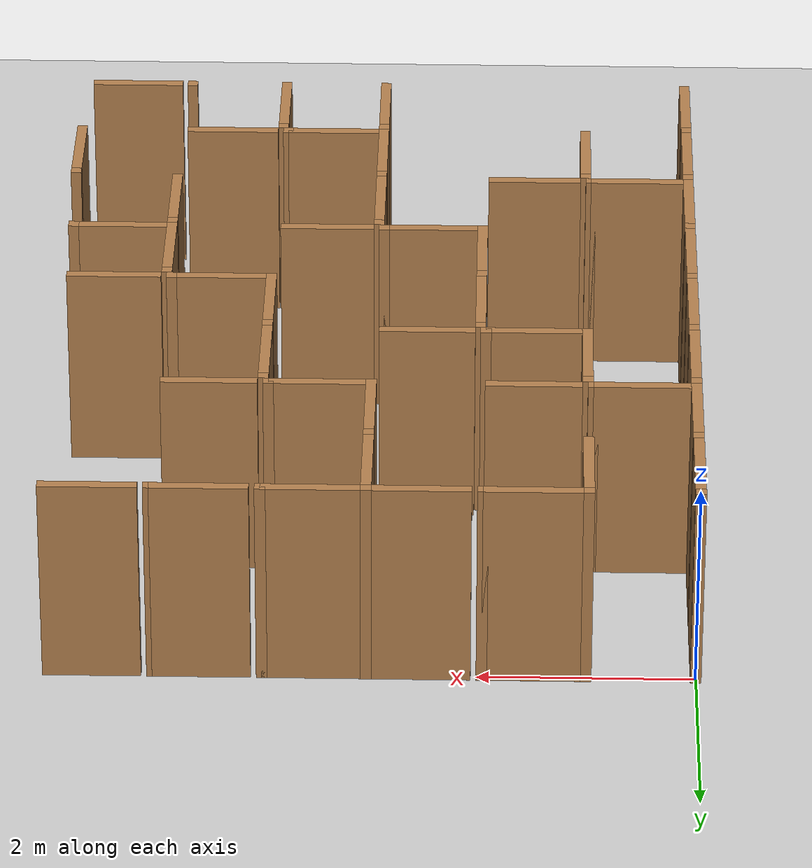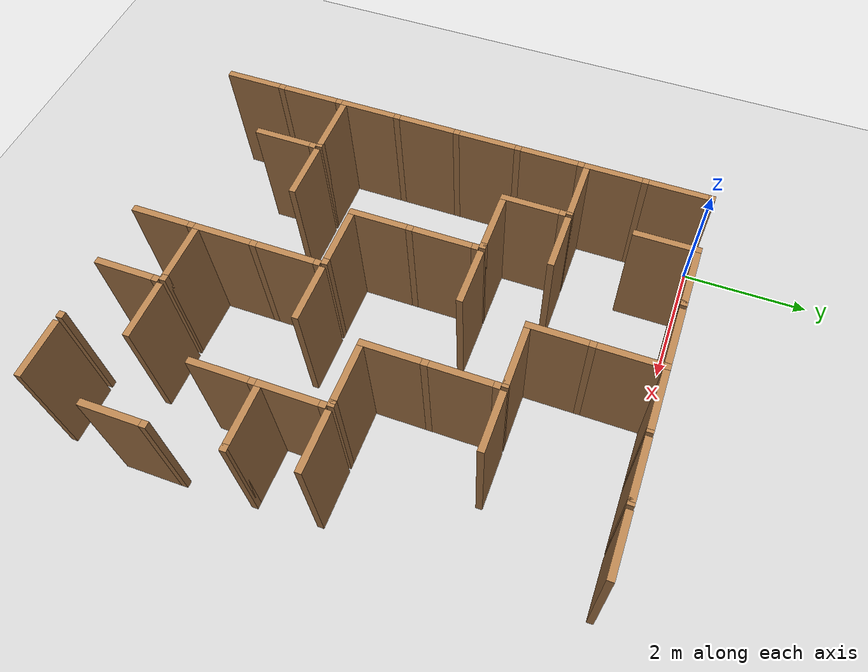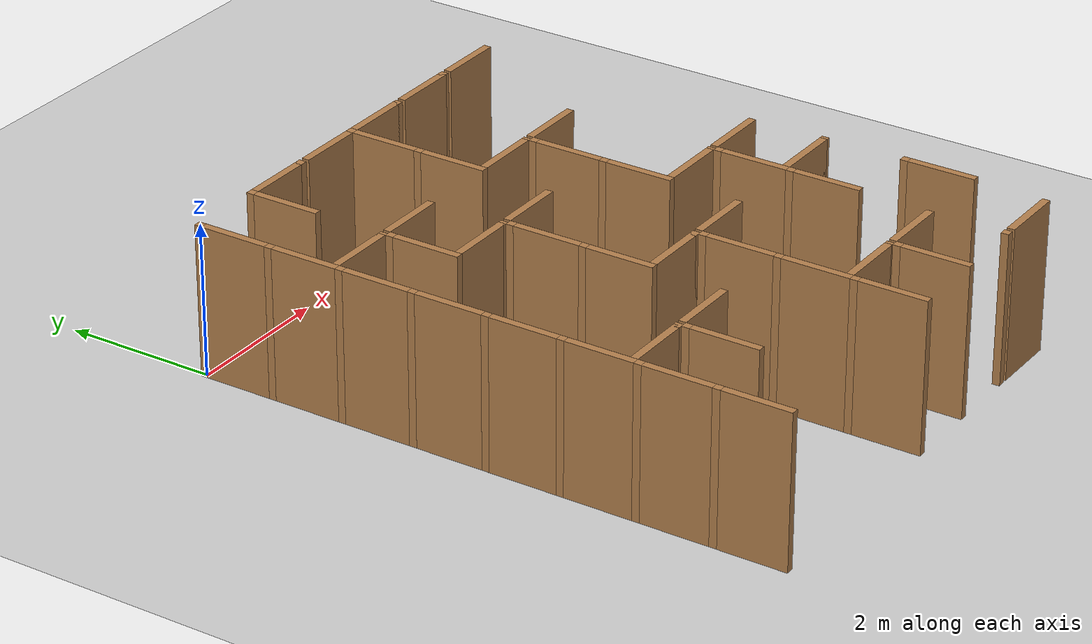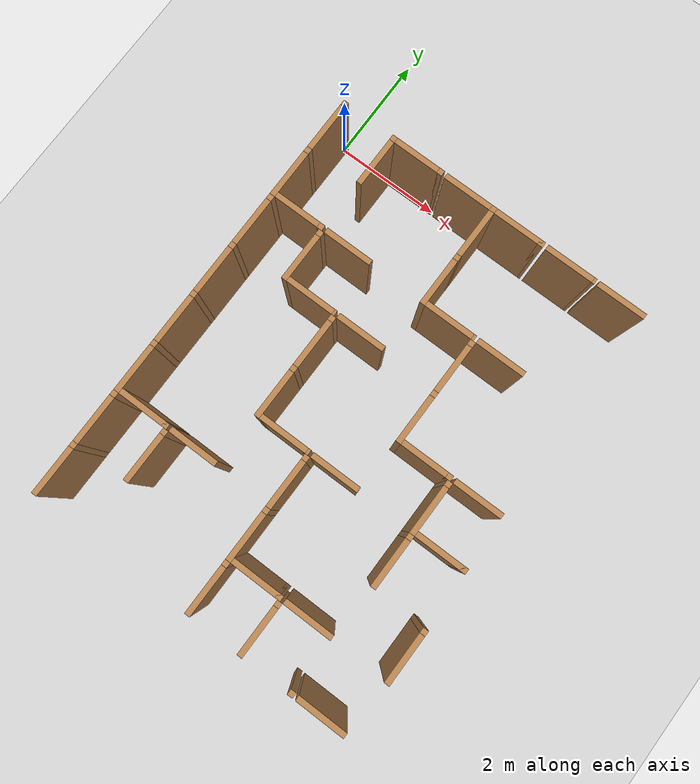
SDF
<sdf version="1.6">
 <world name="default">
  <include><uri>model://sun</uri></include>
  <model name="ground_plane">
   <static>true</static>
   <link name="link">
    <collision name="collision"><geometry><plane><size>12.0 12.0</size></plane></geometry></collision>
    <visual name="visual">
     <cast_shadows>false</cast_shadows>
     <geometry><plane><size>12.0 12.0</size></plane></geometry>
     <material>
      <script><uri>file://media/materials/scripts/gazebo.material</uri><name>Gazebo/Grey</name></script>
     </material>
    </visual>
   </link>
   <pose>6.0 -6.0 0 0 0 0</pose>
  </model>
  <model name="vwall_0_0">
   <pose>0.0 -0.5 1.0 0 0 0</pose>
   <link name="link">
    <collision name="collision"><geometry><box><size>0.1 0.9 2</size></box></geometry></collision>
    <visual name="visual">
     <geometry><box><size>0.1 0.9 2</size></box></geometry>
     <material>
      <script><uri>file://media/materials/scripts/gazebo.material</uri><name>Gazebo/Wood</name></script>
     </material>
    </visual>
   </link>
  </model>
  <model name="joint_0.0_0.0">
   <pose>0.0 0.0 1.0 0 0 0</pose>
   <link name="link">
    <collision name="collision"><geometry><box><size>0.1 0.1 2</size></box></geometry></collision>
    <visual name="visual">
     <geometry><box><size>0.1 0.1 2</size></box></geometry>
     <material>
      <script><uri>file://media/materials/scripts/gazebo.material</uri><name>Gazebo/Wood</name></script>
     </material>
    </visual>
   </link>
  </model>
  <model name="vwall_0_1">
   <pose>1.0 -0.5 1.0 0 0 0</pose>
   <link name="link">
    <collision name="collision"><geometry><box><size>0.1 0.9 2</size></box></geometry></collision>
    <visual name="visual">
     <geometry><box><size>0.1 0.9 2</size></box></geometry>
     <material>
      <script><uri>file://media/materials/scripts/gazebo.material</uri><name>Gazebo/Wood</name></script>
     </material>
    </visual>
   </link>
  </model>
  <model name="joint_1.0_0.0">
   <pose>1.0 0.0 1.0 0 0 0</pose>
   <link name="link">
    <collision name="collision"><geometry><box><size>0.1 0.1 2</size></box></geometry></collision>
    <visual name="visual">
     <geometry><box><size>0.1 0.1 2</size></box></geometry>
     <material>
      <script><uri>file://media/materials/scripts/gazebo.material</uri><name>Gazebo/Wood</name></script>
     </material>
    </visual>
   </link>
  </model>
  <model name="vwall_0_3">
   <pose>3.0 -0.5 1.0 0 0 0</pose>
   <link name="link">
    <collision name="collision"><geometry><box><size>0.1 0.9 2</size></box></geometry></collision>
    <visual name="visual">
     <geometry><box><size>0.1 0.9 2</size></box></geometry>
     <material>
      <script><uri>file://media/materials/scripts/gazebo.material</uri><name>Gazebo/Wood</name></script>
     </material>
    </visual>
   </link>
  </model>
  <model name="joint_3.0_0.0">
   <pose>3.0 0.0 1.0 0 0 0</pose>
   <link name="link">
    <collision name="collision"><geometry><box><size>0.1 0.1 2</size></box></geometry></collision>
    <visual name="visual">
     <geometry><box><size>0.1 0.1 2</size></box></geometry>
     <material>
      <script><uri>file://media/materials/scripts/gazebo.material</uri><name>Gazebo/Wood</name></script>
     </material>
    </visual>
   </link>
  </model>
  <model name="vwall_1_0">
   <pose>0.0 -1.5 1.0 0 0 0</pose>
   <link name="link">
    <collision name="collision"><geometry><box><size>0.1 0.9 2</size></box></geometry></collision>
    <visual name="visual">
     <geometry><box><size>0.1 0.9 2</size></box></geometry>
     <material>
      <script><uri>file://media/materials/scripts/gazebo.material</uri><name>Gazebo/Wood</name></script>
     </material>
    </visual>
   </link>
  </model>
  <model name="joint_0.0_-1.0">
   <pose>0.0 -1.0 1.0 0 0 0</pose>
   <link name="link">
    <collision name="collision"><geometry><box><size>0.1 0.1 2</size></box></geometry></collision>
    <visual name="visual">
     <geometry><box><size>0.1 0.1 2</size></box></geometry>
     <material>
      <script><uri>file://media/materials/scripts/gazebo.material</uri><name>Gazebo/Wood</name></script>
     </material>
    </visual>
   </link>
  </model>
  <model name="vwall_1_3">
   <pose>3.0 -1.5 1.0 0 0 0</pose>
   <link name="link">
    <collision name="collision"><geometry><box><size>0.1 0.9 2</size></box></geometry></collision>
    <visual name="visual">
     <geometry><box><size>0.1 0.9 2</size></box></geometry>
     <material>
      <script><uri>file://media/materials/scripts/gazebo.material</uri><name>Gazebo/Wood</name></script>
     </material>
    </visual>
   </link>
  </model>
  <model name="joint_3.0_-1.0">
   <pose>3.0 -1.0 1.0 0 0 0</pose>
   <link name="link">
    <collision name="collision"><geometry><box><size>0.1 0.1 2</size></box></geometry></collision>
    <visual name="visual">
     <geometry><box><size>0.1 0.1 2</size></box></geometry>
     <material>
      <script><uri>file://media/materials/scripts/gazebo.material</uri><name>Gazebo/Wood</name></script>
     </material>
    </visual>
   </link>
  </model>
  <model name="vwall_2_0">
   <pose>0.0 -2.5 1.0 0 0 0</pose>
   <link name="link">
    <collision name="collision"><geometry><box><size>0.1 0.9 2</size></box></geometry></collision>
    <visual name="visual">
     <geometry><box><size>0.1 0.9 2</size></box></geometry>
     <material>
      <script><uri>file://media/materials/scripts/gazebo.material</uri><name>Gazebo/Wood</name></script>
     </material>
    </visual>
   </link>
  </model>
  <model name="joint_0.0_-2.0">
   <pose>0.0 -2.0 1.0 0 0 0</pose>
   <link name="link">
    <collision name="collision"><geometry><box><size>0.1 0.1 2</size></box></geometry></collision>
    <visual name="visual">
     <geometry><box><size>0.1 0.1 2</size></box></geometry>
     <material>
      <script><uri>file://media/materials/scripts/gazebo.material</uri><name>Gazebo/Wood</name></script>
     </material>
    </visual>
   </link>
  </model>
  <model name="vwall_2_1">
   <pose>1.0 -2.5 1.0 0 0 0</pose>
   <link name="link">
    <collision name="collision"><geometry><box><size>0.1 0.9 2</size></box></geometry></collision>
    <visual name="visual">
     <geometry><box><size>0.1 0.9 2</size></box></geometry>
     <material>
      <script><uri>file://media/materials/scripts/gazebo.material</uri><name>Gazebo/Wood</name></script>
     </material>
    </visual>
   </link>
  </model>
  <model name="joint_1.0_-2.0">
   <pose>1.0 -2.0 1.0 0 0 0</pose>
   <link name="link">
    <collision name="collision"><geometry><box><size>0.1 0.1 2</size></box></geometry></collision>
    <visual name="visual">
     <geometry><box><size>0.1 0.1 2</size></box></geometry>
     <material>
      <script><uri>file://media/materials/scripts/gazebo.material</uri><name>Gazebo/Wood</name></script>
     </material>
    </visual>
   </link>
  </model>
  <model name="vwall_2_4">
   <pose>4.0 -2.5 1.0 0 0 0</pose>
   <link name="link">
    <collision name="collision"><geometry><box><size>0.1 0.9 2</size></box></geometry></collision>
    <visual name="visual">
     <geometry><box><size>0.1 0.9 2</size></box></geometry>
     <material>
      <script><uri>file://media/materials/scripts/gazebo.material</uri><name>Gazebo/Wood</name></script>
     </material>
    </visual>
   </link>
  </model>
  <model name="joint_4.0_-2.0">
   <pose>4.0 -2.0 1.0 0 0 0</pose>
   <link name="link">
    <collision name="collision"><geometry><box><size>0.1 0.1 2</size></box></geometry></collision>
    <visual name="visual">
     <geometry><box><size>0.1 0.1 2</size></box></geometry>
     <material>
      <script><uri>file://media/materials/scripts/gazebo.material</uri><name>Gazebo/Wood</name></script>
     </material>
    </visual>
   </link>
  </model>
  <model name="vwall_3_0">
   <pose>0.0 -3.5 1.0 0 0 0</pose>
   <link name="link">
    <collision name="collision"><geometry><box><size>0.1 0.9 2</size></box></geometry></collision>
    <visual name="visual">
     <geometry><box><size>0.1 0.9 2</size></box></geometry>
     <material>
      <script><uri>file://media/materials/scripts/gazebo.material</uri><name>Gazebo/Wood</name></script>
     </material>
    </visual>
   </link>
  </model>
  <model name="joint_0.0_-3.0">
   <pose>0.0 -3.0 1.0 0 0 0</pose>
   <link name="link">
    <collision name="collision"><geometry><box><size>0.1 0.1 2</size></box></geometry></collision>
    <visual name="visual">
     <geometry><box><size>0.1 0.1 2</size></box></geometry>
     <material>
      <script><uri>file://media/materials/scripts/gazebo.material</uri><name>Gazebo/Wood</name></script>
     </material>
    </visual>
   </link>
  </model>
  <model name="vwall_3_2">
   <pose>2.0 -3.5 1.0 0 0 0</pose>
   <link name="link">
    <collision name="collision"><geometry><box><size>0.1 0.9 2</size></box></geometry></collision>
    <visual name="visual">
     <geometry><box><size>0.1 0.9 2</size></box></geometry>
     <material>
      <script><uri>file://media/materials/scripts/gazebo.material</uri><name>Gazebo/Wood</name></script>
     </material>
    </visual>
   </link>
  </model>
  <model name="joint_2.0_-3.0">
   <pose>2.0 -3.0 1.0 0 0 0</pose>
   <link name="link">
    <collision name="collision"><geometry><box><size>0.1 0.1 2</size></box></geometry></collision>
    <visual name="visual">
     <geometry><box><size>0.1 0.1 2</size></box></geometry>
     <material>
      <script><uri>file://media/materials/scripts/gazebo.material</uri><name>Gazebo/Wood</name></script>
     </material>
    </visual>
   </link>
  </model>
  <model name="vwall_3_4">
   <pose>4.0 -3.5 1.0 0 0 0</pose>
   <link name="link">
    <collision name="collision"><geometry><box><size>0.1 0.9 2</size></box></geometry></collision>
    <visual name="visual">
     <geometry><box><size>0.1 0.9 2</size></box></geometry>
     <material>
      <script><uri>file://media/materials/scripts/gazebo.material</uri><name>Gazebo/Wood</name></script>
     </material>
    </visual>
   </link>
  </model>
  <model name="joint_4.0_-3.0">
   <pose>4.0 -3.0 1.0 0 0 0</pose>
   <link name="link">
    <collision name="collision"><geometry><box><size>0.1 0.1 2</size></box></geometry></collision>
    <visual name="visual">
     <geometry><box><size>0.1 0.1 2</size></box></geometry>
     <material>
      <script><uri>file://media/materials/scripts/gazebo.material</uri><name>Gazebo/Wood</name></script>
     </material>
    </visual>
   </link>
  </model>
  <model name="vwall_4_0">
   <pose>0.0 -4.5 1.0 0 0 0</pose>
   <link name="link">
    <collision name="collision"><geometry><box><size>0.1 0.9 2</size></box></geometry></collision>
    <visual name="visual">
     <geometry><box><size>0.1 0.9 2</size></box></geometry>
     <material>
      <script><uri>file://media/materials/scripts/gazebo.material</uri><name>Gazebo/Wood</name></script>
     </material>
    </visual>
   </link>
  </model>
  <model name="joint_0.0_-4.0">
   <pose>0.0 -4.0 1.0 0 0 0</pose>
   <link name="link">
    <collision name="collision"><geometry><box><size>0.1 0.1 2</size></box></geometry></collision>
    <visual name="visual">
     <geometry><box><size>0.1 0.1 2</size></box></geometry>
     <material>
      <script><uri>file://media/materials/scripts/gazebo.material</uri><name>Gazebo/Wood</name></script>
     </material>
    </visual>
   </link>
  </model>
  <model name="vwall_4_2">
   <pose>2.0 -4.5 1.0 0 0 0</pose>
   <link name="link">
    <collision name="collision"><geometry><box><size>0.1 0.9 2</size></box></geometry></collision>
    <visual name="visual">
     <geometry><box><size>0.1 0.9 2</size></box></geometry>
     <material>
      <script><uri>file://media/materials/scripts/gazebo.material</uri><name>Gazebo/Wood</name></script>
     </material>
    </visual>
   </link>
  </model>
  <model name="joint_2.0_-4.0">
   <pose>2.0 -4.0 1.0 0 0 0</pose>
   <link name="link">
    <collision name="collision"><geometry><box><size>0.1 0.1 2</size></box></geometry></collision>
    <visual name="visual">
     <geometry><box><size>0.1 0.1 2</size></box></geometry>
     <material>
      <script><uri>file://media/materials/scripts/gazebo.material</uri><name>Gazebo/Wood</name></script>
     </material>
    </visual>
   </link>
  </model>
  <model name="vwall_4_5">
   <pose>5.0 -4.5 1.0 0 0 0</pose>
   <link name="link">
    <collision name="collision"><geometry><box><size>0.1 0.9 2</size></box></geometry></collision>
    <visual name="visual">
     <geometry><box><size>0.1 0.9 2</size></box></geometry>
     <material>
      <script><uri>file://media/materials/scripts/gazebo.material</uri><name>Gazebo/Wood</name></script>
     </material>
    </visual>
   </link>
  </model>
  <model name="joint_5.0_-4.0">
   <pose>5.0 -4.0 1.0 0 0 0</pose>
   <link name="link">
    <collision name="collision"><geometry><box><size>0.1 0.1 2</size></box></geometry></collision>
    <visual name="visual">
     <geometry><box><size>0.1 0.1 2</size></box></geometry>
     <material>
      <script><uri>file://media/materials/scripts/gazebo.material</uri><name>Gazebo/Wood</name></script>
     </material>
    </visual>
   </link>
  </model>
  <model name="vwall_5_0">
   <pose>0.0 -5.5 1.0 0 0 0</pose>
   <link name="link">
    <collision name="collision"><geometry><box><size>0.1 0.9 2</size></box></geometry></collision>
    <visual name="visual">
     <geometry><box><size>0.1 0.9 2</size></box></geometry>
     <material>
      <script><uri>file://media/materials/scripts/gazebo.material</uri><name>Gazebo/Wood</name></script>
     </material>
    </visual>
   </link>
  </model>
  <model name="joint_0.0_-5.0">
   <pose>0.0 -5.0 1.0 0 0 0</pose>
   <link name="link">
    <collision name="collision"><geometry><box><size>0.1 0.1 2</size></box></geometry></collision>
    <visual name="visual">
     <geometry><box><size>0.1 0.1 2</size></box></geometry>
     <material>
      <script><uri>file://media/materials/scripts/gazebo.material</uri><name>Gazebo/Wood</name></script>
     </material>
    </visual>
   </link>
  </model>
  <model name="vwall_5_3">
   <pose>3.0 -5.5 1.0 0 0 0</pose>
   <link name="link">
    <collision name="collision"><geometry><box><size>0.1 0.9 2</size></box></geometry></collision>
    <visual name="visual">
     <geometry><box><size>0.1 0.9 2</size></box></geometry>
     <material>
      <script><uri>file://media/materials/scripts/gazebo.material</uri><name>Gazebo/Wood</name></script>
     </material>
    </visual>
   </link>
  </model>
  <model name="joint_3.0_-5.0">
   <pose>3.0 -5.0 1.0 0 0 0</pose>
   <link name="link">
    <collision name="collision"><geometry><box><size>0.1 0.1 2</size></box></geometry></collision>
    <visual name="visual">
     <geometry><box><size>0.1 0.1 2</size></box></geometry>
     <material>
      <script><uri>file://media/materials/scripts/gazebo.material</uri><name>Gazebo/Wood</name></script>
     </material>
    </visual>
   </link>
  </model>
  <model name="vwall_5_5">
   <pose>5.0 -5.5 1.0 0 0 0</pose>
   <link name="link">
    <collision name="collision"><geometry><box><size>0.1 0.9 2</size></box></geometry></collision>
    <visual name="visual">
     <geometry><box><size>0.1 0.9 2</size></box></geometry>
     <material>
      <script><uri>file://media/materials/scripts/gazebo.material</uri><name>Gazebo/Wood</name></script>
     </material>
    </visual>
   </link>
  </model>
  <model name="joint_5.0_-5.0">
   <pose>5.0 -5.0 1.0 0 0 0</pose>
   <link name="link">
    <collision name="collision"><geometry><box><size>0.1 0.1 2</size></box></geometry></collision>
    <visual name="visual">
     <geometry><box><size>0.1 0.1 2</size></box></geometry>
     <material>
      <script><uri>file://media/materials/scripts/gazebo.material</uri><name>Gazebo/Wood</name></script>
     </material>
    </visual>
   </link>
  </model>
  <model name="vwall_6_0">
   <pose>0.0 -6.5 1.0 0 0 0</pose>
   <link name="link">
    <collision name="collision"><geometry><box><size>0.1 0.9 2</size></box></geometry></collision>
    <visual name="visual">
     <geometry><box><size>0.1 0.9 2</size></box></geometry>
     <material>
      <script><uri>file://media/materials/scripts/gazebo.material</uri><name>Gazebo/Wood</name></script>
     </material>
    </visual>
   </link>
  </model>
  <model name="joint_0.0_-6.0">
   <pose>0.0 -6.0 1.0 0 0 0</pose>
   <link name="link">
    <collision name="collision"><geometry><box><size>0.1 0.1 2</size></box></geometry></collision>
    <visual name="visual">
     <geometry><box><size>0.1 0.1 2</size></box></geometry>
     <material>
      <script><uri>file://media/materials/scripts/gazebo.material</uri><name>Gazebo/Wood</name></script>
     </material>
    </visual>
   </link>
  </model>
  <model name="vwall_6_1">
   <pose>1.0 -6.5 1.0 0 0 0</pose>
   <link name="link">
    <collision name="collision"><geometry><box><size>0.1 0.9 2</size></box></geometry></collision>
    <visual name="visual">
     <geometry><box><size>0.1 0.9 2</size></box></geometry>
     <material>
      <script><uri>file://media/materials/scripts/gazebo.material</uri><name>Gazebo/Wood</name></script>
     </material>
    </visual>
   </link>
  </model>
  <model name="joint_1.0_-6.0">
   <pose>1.0 -6.0 1.0 0 0 0</pose>
   <link name="link">
    <collision name="collision"><geometry><box><size>0.1 0.1 2</size></box></geometry></collision>
    <visual name="visual">
     <geometry><box><size>0.1 0.1 2</size></box></geometry>
     <material>
      <script><uri>file://media/materials/scripts/gazebo.material</uri><name>Gazebo/Wood</name></script>
     </material>
    </visual>
   </link>
  </model>
  <model name="vwall_6_3">
   <pose>3.0 -6.5 1.0 0 0 0</pose>
   <link name="link">
    <collision name="collision"><geometry><box><size>0.1 0.9 2</size></box></geometry></collision>
    <visual name="visual">
     <geometry><box><size>0.1 0.9 2</size></box></geometry>
     <material>
      <script><uri>file://media/materials/scripts/gazebo.material</uri><name>Gazebo/Wood</name></script>
     </material>
    </visual>
   </link>
  </model>
  <model name="joint_3.0_-6.0">
   <pose>3.0 -6.0 1.0 0 0 0</pose>
   <link name="link">
    <collision name="collision"><geometry><box><size>0.1 0.1 2</size></box></geometry></collision>
    <visual name="visual">
     <geometry><box><size>0.1 0.1 2</size></box></geometry>
     <material>
      <script><uri>file://media/materials/scripts/gazebo.material</uri><name>Gazebo/Wood</name></script>
     </material>
    </visual>
   </link>
  </model>
  <model name="vwall_6_6">
   <pose>6.0 -6.5 1.0 0 0 0</pose>
   <link name="link">
    <collision name="collision"><geometry><box><size>0.1 0.9 2</size></box></geometry></collision>
    <visual name="visual">
     <geometry><box><size>0.1 0.9 2</size></box></geometry>
     <material>
      <script><uri>file://media/materials/scripts/gazebo.material</uri><name>Gazebo/Wood</name></script>
     </material>
    </visual>
   </link>
  </model>
  <model name="joint_6.0_-6.0">
   <pose>6.0 -6.0 1.0 0 0 0</pose>
   <link name="link">
    <collision name="collision"><geometry><box><size>0.1 0.1 2</size></box></geometry></collision>
    <visual name="visual">
     <geometry><box><size>0.1 0.1 2</size></box></geometry>
     <material>
      <script><uri>file://media/materials/scripts/gazebo.material</uri><name>Gazebo/Wood</name></script>
     </material>
    </visual>
   </link>
  </model>
  <model name="vwall_7_0">
   <pose>0.0 -7.5 1.0 0 0 0</pose>
   <link name="link">
    <collision name="collision"><geometry><box><size>0.1 0.9 2</size></box></geometry></collision>
    <visual name="visual">
     <geometry><box><size>0.1 0.9 2</size></box></geometry>
     <material>
      <script><uri>file://media/materials/scripts/gazebo.material</uri><name>Gazebo/Wood</name></script>
     </material>
    </visual>
   </link>
  </model>
  <model name="joint_0.0_-7.0">
   <pose>0.0 -7.0 1.0 0 0 0</pose>
   <link name="link">
    <collision name="collision"><geometry><box><size>0.1 0.1 2</size></box></geometry></collision>
    <visual name="visual">
     <geometry><box><size>0.1 0.1 2</size></box></geometry>
     <material>
      <script><uri>file://media/materials/scripts/gazebo.material</uri><name>Gazebo/Wood</name></script>
     </material>
    </visual>
   </link>
  </model>
  <model name="vwall_7_3">
   <pose>3.0 -7.5 1.0 0 0 0</pose>
   <link name="link">
    <collision name="collision"><geometry><box><size>0.1 0.9 2</size></box></geometry></collision>
    <visual name="visual">
     <geometry><box><size>0.1 0.9 2</size></box></geometry>
     <material>
      <script><uri>file://media/materials/scripts/gazebo.material</uri><name>Gazebo/Wood</name></script>
     </material>
    </visual>
   </link>
  </model>
  <model name="joint_3.0_-7.0">
   <pose>3.0 -7.0 1.0 0 0 0</pose>
   <link name="link">
    <collision name="collision"><geometry><box><size>0.1 0.1 2</size></box></geometry></collision>
    <visual name="visual">
     <geometry><box><size>0.1 0.1 2</size></box></geometry>
     <material>
      <script><uri>file://media/materials/scripts/gazebo.material</uri><name>Gazebo/Wood</name></script>
     </material>
    </visual>
   </link>
  </model>
  <model name="vwall_7_4">
   <pose>4.0 -7.5 1.0 0 0 0</pose>
   <link name="link">
    <collision name="collision"><geometry><box><size>0.1 0.9 2</size></box></geometry></collision>
    <visual name="visual">
     <geometry><box><size>0.1 0.9 2</size></box></geometry>
     <material>
      <script><uri>file://media/materials/scripts/gazebo.material</uri><name>Gazebo/Wood</name></script>
     </material>
    </visual>
   </link>
  </model>
  <model name="joint_4.0_-7.0">
   <pose>4.0 -7.0 1.0 0 0 0</pose>
   <link name="link">
    <collision name="collision"><geometry><box><size>0.1 0.1 2</size></box></geometry></collision>
    <visual name="visual">
     <geometry><box><size>0.1 0.1 2</size></box></geometry>
     <material>
      <script><uri>file://media/materials/scripts/gazebo.material</uri><name>Gazebo/Wood</name></script>
     </material>
    </visual>
   </link>
  </model>
  <model name="hwall_0_1">
   <pose>1.5 0.0 1.0 0 0 0</pose>
   <link name="link">
    <collision name="collision"><geometry><box><size>0.9 0.1 2</size></box></geometry></collision>
    <visual name="visual">
     <geometry><box><size>0.9 0.1 2</size></box></geometry>
     <material>
      <script><uri>file://media/materials/scripts/gazebo.material</uri><name>Gazebo/Wood</name></script>
     </material>
    </visual>
   </link>
  </model>
  <model name="joint_1.95_0.0">
   <pose>1.95 0.0 1.0 0 0 0</pose>
   <link name="link">
    <collision name="collision"><geometry><box><size>0.1 0.1 2</size></box></geometry></collision>
    <visual name="visual">
     <geometry><box><size>0.1 0.1 2</size></box></geometry>
     <material>
      <script><uri>file://media/materials/scripts/gazebo.material</uri><name>Gazebo/Wood</name></script>
     </material>
    </visual>
   </link>
  </model>
  <model name="hwall_0_2">
   <pose>2.5 0.0 1.0 0 0 0</pose>
   <link name="link">
    <collision name="collision"><geometry><box><size>0.9 0.1 2</size></box></geometry></collision>
    <visual name="visual">
     <geometry><box><size>0.9 0.1 2</size></box></geometry>
     <material>
      <script><uri>file://media/materials/scripts/gazebo.material</uri><name>Gazebo/Wood</name></script>
     </material>
    </visual>
   </link>
  </model>
  <model name="hwall_0_3">
   <pose>3.5 0.0 1.0 0 0 0</pose>
   <link name="link">
    <collision name="collision"><geometry><box><size>0.9 0.1 2</size></box></geometry></collision>
    <visual name="visual">
     <geometry><box><size>0.9 0.1 2</size></box></geometry>
     <material>
      <script><uri>file://media/materials/scripts/gazebo.material</uri><name>Gazebo/Wood</name></script>
     </material>
    </visual>
   </link>
  </model>
  <model name="joint_3.95_0.0">
   <pose>3.95 0.0 1.0 0 0 0</pose>
   <link name="link">
    <collision name="collision"><geometry><box><size>0.1 0.1 2</size></box></geometry></collision>
    <visual name="visual">
     <geometry><box><size>0.1 0.1 2</size></box></geometry>
     <material>
      <script><uri>file://media/materials/scripts/gazebo.material</uri><name>Gazebo/Wood</name></script>
     </material>
    </visual>
   </link>
  </model>
  <model name="hwall_0_4">
   <pose>4.5 0.0 1.0 0 0 0</pose>
   <link name="link">
    <collision name="collision"><geometry><box><size>0.9 0.1 2</size></box></geometry></collision>
    <visual name="visual">
     <geometry><box><size>0.9 0.1 2</size></box></geometry>
     <material>
      <script><uri>file://media/materials/scripts/gazebo.material</uri><name>Gazebo/Wood</name></script>
     </material>
    </visual>
   </link>
  </model>
  <model name="joint_4.95_0.0">
   <pose>4.95 0.0 1.0 0 0 0</pose>
   <link name="link">
    <collision name="collision"><geometry><box><size>0.1 0.1 2</size></box></geometry></collision>
    <visual name="visual">
     <geometry><box><size>0.1 0.1 2</size></box></geometry>
     <material>
      <script><uri>file://media/materials/scripts/gazebo.material</uri><name>Gazebo/Wood</name></script>
     </material>
    </visual>
   </link>
  </model>
  <model name="hwall_0_5">
   <pose>5.5 0.0 1.0 0 0 0</pose>
   <link name="link">
    <collision name="collision"><geometry><box><size>0.9 0.1 2</size></box></geometry></collision>
    <visual name="visual">
     <geometry><box><size>0.9 0.1 2</size></box></geometry>
     <material>
      <script><uri>file://media/materials/scripts/gazebo.material</uri><name>Gazebo/Wood</name></script>
     </material>
    </visual>
   </link>
  </model>
  <model name="hwall_1_0">
   <pose>0.5 -1.9 1.0 0 0 0</pose>
   <link name="link">
    <collision name="collision"><geometry><box><size>0.9 0.1 2</size></box></geometry></collision>
    <visual name="visual">
     <geometry><box><size>0.9 0.1 2</size></box></geometry>
     <material>
      <script><uri>file://media/materials/scripts/gazebo.material</uri><name>Gazebo/Wood</name></script>
     </material>
    </visual>
   </link>
  </model>
  <model name="joint_0.95_-1.9">
   <pose>0.95 -1.9 1.0 0 0 0</pose>
   <link name="link">
    <collision name="collision"><geometry><box><size>0.1 0.1 2</size></box></geometry></collision>
    <visual name="visual">
     <geometry><box><size>0.1 0.1 2</size></box></geometry>
     <material>
      <script><uri>file://media/materials/scripts/gazebo.material</uri><name>Gazebo/Wood</name></script>
     </material>
    </visual>
   </link>
  </model>
  <model name="hwall_1_1">
   <pose>1.5 -1.9 1.0 0 0 0</pose>
   <link name="link">
    <collision name="collision"><geometry><box><size>0.9 0.1 2</size></box></geometry></collision>
    <visual name="visual">
     <geometry><box><size>0.9 0.1 2</size></box></geometry>
     <material>
      <script><uri>file://media/materials/scripts/gazebo.material</uri><name>Gazebo/Wood</name></script>
     </material>
    </visual>
   </link>
  </model>
  <model name="hwall_1_3">
   <pose>3.5 -1.9 1.0 0 0 0</pose>
   <link name="link">
    <collision name="collision"><geometry><box><size>0.9 0.1 2</size></box></geometry></collision>
    <visual name="visual">
     <geometry><box><size>0.9 0.1 2</size></box></geometry>
     <material>
      <script><uri>file://media/materials/scripts/gazebo.material</uri><name>Gazebo/Wood</name></script>
     </material>
    </visual>
   </link>
  </model>
  <model name="joint_3.95_-1.9">
   <pose>3.95 -1.9 1.0 0 0 0</pose>
   <link name="link">
    <collision name="collision"><geometry><box><size>0.1 0.1 2</size></box></geometry></collision>
    <visual name="visual">
     <geometry><box><size>0.1 0.1 2</size></box></geometry>
     <material>
      <script><uri>file://media/materials/scripts/gazebo.material</uri><name>Gazebo/Wood</name></script>
     </material>
    </visual>
   </link>
  </model>
  <model name="hwall_1_4">
   <pose>4.5 -1.9 1.0 0 0 0</pose>
   <link name="link">
    <collision name="collision"><geometry><box><size>0.9 0.1 2</size></box></geometry></collision>
    <visual name="visual">
     <geometry><box><size>0.9 0.1 2</size></box></geometry>
     <material>
      <script><uri>file://media/materials/scripts/gazebo.material</uri><name>Gazebo/Wood</name></script>
     </material>
    </visual>
   </link>
  </model>
  <model name="hwall_2_1">
   <pose>1.5 -2.9 1.0 0 0 0</pose>
   <link name="link">
    <collision name="collision"><geometry><box><size>0.9 0.1 2</size></box></geometry></collision>
    <visual name="visual">
     <geometry><box><size>0.9 0.1 2</size></box></geometry>
     <material>
      <script><uri>file://media/materials/scripts/gazebo.material</uri><name>Gazebo/Wood</name></script>
     </material>
    </visual>
   </link>
  </model>
  <model name="joint_1.95_-2.9">
   <pose>1.95 -2.9 1.0 0 0 0</pose>
   <link name="link">
    <collision name="collision"><geometry><box><size>0.1 0.1 2</size></box></geometry></collision>
    <visual name="visual">
     <geometry><box><size>0.1 0.1 2</size></box></geometry>
     <material>
      <script><uri>file://media/materials/scripts/gazebo.material</uri><name>Gazebo/Wood</name></script>
     </material>
    </visual>
   </link>
  </model>
  <model name="hwall_2_2">
   <pose>2.5 -2.9 1.0 0 0 0</pose>
   <link name="link">
    <collision name="collision"><geometry><box><size>0.9 0.1 2</size></box></geometry></collision>
    <visual name="visual">
     <geometry><box><size>0.9 0.1 2</size></box></geometry>
     <material>
      <script><uri>file://media/materials/scripts/gazebo.material</uri><name>Gazebo/Wood</name></script>
     </material>
    </visual>
   </link>
  </model>
  <model name="hwall_3_4">
   <pose>4.5 -3.9 1.0 0 0 0</pose>
   <link name="link">
    <collision name="collision"><geometry><box><size>0.9 0.1 2</size></box></geometry></collision>
    <visual name="visual">
     <geometry><box><size>0.9 0.1 2</size></box></geometry>
     <material>
      <script><uri>file://media/materials/scripts/gazebo.material</uri><name>Gazebo/Wood</name></script>
     </material>
    </visual>
   </link>
  </model>
  <model name="joint_4.95_-3.9">
   <pose>4.95 -3.9 1.0 0 0 0</pose>
   <link name="link">
    <collision name="collision"><geometry><box><size>0.1 0.1 2</size></box></geometry></collision>
    <visual name="visual">
     <geometry><box><size>0.1 0.1 2</size></box></geometry>
     <material>
      <script><uri>file://media/materials/scripts/gazebo.material</uri><name>Gazebo/Wood</name></script>
     </material>
    </visual>
   </link>
  </model>
  <model name="hwall_3_5">
   <pose>5.5 -3.9 1.0 0 0 0</pose>
   <link name="link">
    <collision name="collision"><geometry><box><size>0.9 0.1 2</size></box></geometry></collision>
    <visual name="visual">
     <geometry><box><size>0.9 0.1 2</size></box></geometry>
     <material>
      <script><uri>file://media/materials/scripts/gazebo.material</uri><name>Gazebo/Wood</name></script>
     </material>
    </visual>
   </link>
  </model>
  <model name="hwall_4_2">
   <pose>2.5 -4.9 1.0 0 0 0</pose>
   <link name="link">
    <collision name="collision"><geometry><box><size>0.9 0.1 2</size></box></geometry></collision>
    <visual name="visual">
     <geometry><box><size>0.9 0.1 2</size></box></geometry>
     <material>
      <script><uri>file://media/materials/scripts/gazebo.material</uri><name>Gazebo/Wood</name></script>
     </material>
    </visual>
   </link>
  </model>
  <model name="joint_2.95_-4.9">
   <pose>2.95 -4.9 1.0 0 0 0</pose>
   <link name="link">
    <collision name="collision"><geometry><box><size>0.1 0.1 2</size></box></geometry></collision>
    <visual name="visual">
     <geometry><box><size>0.1 0.1 2</size></box></geometry>
     <material>
      <script><uri>file://media/materials/scripts/gazebo.material</uri><name>Gazebo/Wood</name></script>
     </material>
    </visual>
   </link>
  </model>
  <model name="hwall_4_3">
   <pose>3.5 -4.9 1.0 0 0 0</pose>
   <link name="link">
    <collision name="collision"><geometry><box><size>0.9 0.1 2</size></box></geometry></collision>
    <visual name="visual">
     <geometry><box><size>0.9 0.1 2</size></box></geometry>
     <material>
      <script><uri>file://media/materials/scripts/gazebo.material</uri><name>Gazebo/Wood</name></script>
     </material>
    </visual>
   </link>
  </model>
  <model name="hwall_4_5">
   <pose>5.5 -4.9 1.0 0 0 0</pose>
   <link name="link">
    <collision name="collision"><geometry><box><size>0.9 0.1 2</size></box></geometry></collision>
    <visual name="visual">
     <geometry><box><size>0.9 0.1 2</size></box></geometry>
     <material>
      <script><uri>file://media/materials/scripts/gazebo.material</uri><name>Gazebo/Wood</name></script>
     </material>
    </visual>
   </link>
  </model>
  <model name="joint_5.95_-4.9">
   <pose>5.95 -4.9 1.0 0 0 0</pose>
   <link name="link">
    <collision name="collision"><geometry><box><size>0.1 0.1 2</size></box></geometry></collision>
    <visual name="visual">
     <geometry><box><size>0.1 0.1 2</size></box></geometry>
     <material>
      <script><uri>file://media/materials/scripts/gazebo.material</uri><name>Gazebo/Wood</name></script>
     </material>
    </visual>
   </link>
  </model>
  <model name="hwall_5_0">
   <pose>0.5 -5.9 1.0 0 0 0</pose>
   <link name="link">
    <collision name="collision"><geometry><box><size>0.9 0.1 2</size></box></geometry></collision>
    <visual name="visual">
     <geometry><box><size>0.9 0.1 2</size></box></geometry>
     <material>
      <script><uri>file://media/materials/scripts/gazebo.material</uri><name>Gazebo/Wood</name></script>
     </material>
    </visual>
   </link>
  </model>
  <model name="joint_0.95_-5.9">
   <pose>0.95 -5.9 1.0 0 0 0</pose>
   <link name="link">
    <collision name="collision"><geometry><box><size>0.1 0.1 2</size></box></geometry></collision>
    <visual name="visual">
     <geometry><box><size>0.1 0.1 2</size></box></geometry>
     <material>
      <script><uri>file://media/materials/scripts/gazebo.material</uri><name>Gazebo/Wood</name></script>
     </material>
    </visual>
   </link>
  </model>
  <model name="hwall_5_1">
   <pose>1.5 -5.9 1.0 0 0 0</pose>
   <link name="link">
    <collision name="collision"><geometry><box><size>0.9 0.1 2</size></box></geometry></collision>
    <visual name="visual">
     <geometry><box><size>0.9 0.1 2</size></box></geometry>
     <material>
      <script><uri>file://media/materials/scripts/gazebo.material</uri><name>Gazebo/Wood</name></script>
     </material>
    </visual>
   </link>
  </model>
  <model name="hwall_6_3">
   <pose>3.5 -6.9 1.0 0 0 0</pose>
   <link name="link">
    <collision name="collision"><geometry><box><size>0.9 0.1 2</size></box></geometry></collision>
    <visual name="visual">
     <geometry><box><size>0.9 0.1 2</size></box></geometry>
     <material>
      <script><uri>file://media/materials/scripts/gazebo.material</uri><name>Gazebo/Wood</name></script>
     </material>
    </visual>
   </link>
  </model>
  <model name="joint_3.95_-6.9">
   <pose>3.95 -6.9 1.0 0 0 0</pose>
   <link name="link">
    <collision name="collision"><geometry><box><size>0.1 0.1 2</size></box></geometry></collision>
    <visual name="visual">
     <geometry><box><size>0.1 0.1 2</size></box></geometry>
     <material>
      <script><uri>file://media/materials/scripts/gazebo.material</uri><name>Gazebo/Wood</name></script>
     </material>
    </visual>
   </link>
  </model>
  <model name="hwall_6_4">
   <pose>4.5 -6.9 1.0 0 0 0</pose>
   <link name="link">
    <collision name="collision"><geometry><box><size>0.9 0.1 2</size></box></geometry></collision>
    <visual name="visual">
     <geometry><box><size>0.9 0.1 2</size></box></geometry>
     <material>
      <script><uri>file://media/materials/scripts/gazebo.material</uri><name>Gazebo/Wood</name></script>
     </material>
    </visual>
   </link>
  </model>
  <model name="joint_4.95_-7.9">
   <pose>4.95 -7.9 1.0 0 0 0</pose>
   <link name="link">
    <collision name="collision"><geometry><box><size>0.1 0.1 2</size></box></geometry></collision>
    <visual name="visual">
     <geometry><box><size>0.1 0.1 2</size></box></geometry>
     <material>
      <script><uri>file://media/materials/scripts/gazebo.material</uri><name>Gazebo/Wood</name></script>
     </material>
    </visual>
   </link>
  </model>
  <model name="hwall_7_5">
   <pose>5.5 -7.9 1.0 0 0 0</pose>
   <link name="link">
    <collision name="collision"><geometry><box><size>0.9 0.1 2</size></box></geometry></collision>
    <visual name="visual">
     <geometry><box><size>0.9 0.1 2</size></box></geometry>
     <material>
      <script><uri>file://media/materials/scripts/gazebo.material</uri><name>Gazebo/Wood</name></script>
     </material>
    </visual>
   </link>
  </model>
 </world>
</sdf>
